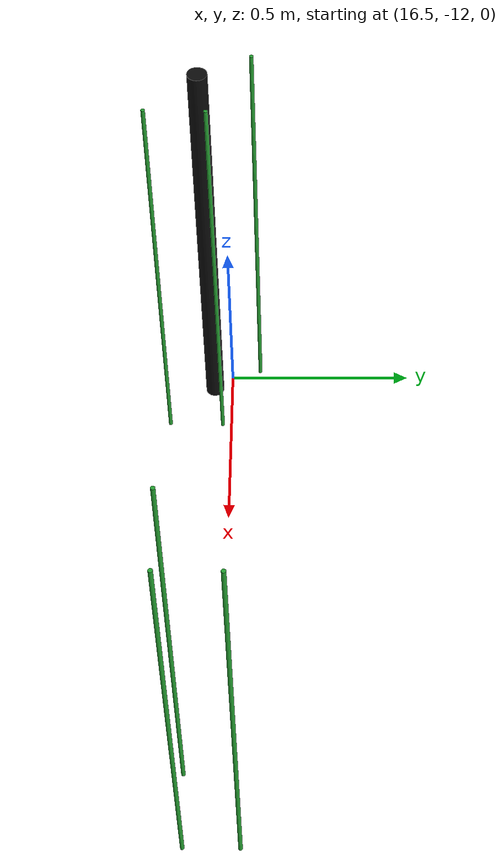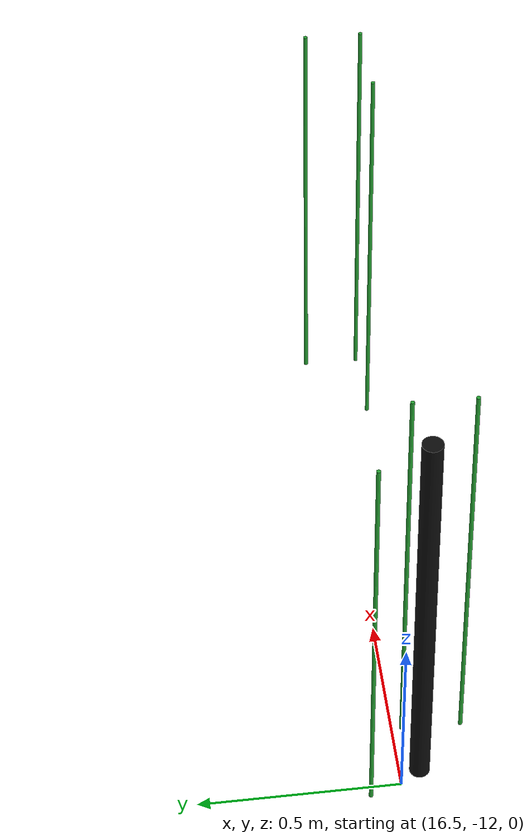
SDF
<sdf version="1.6">
 <world name="default">
  <model name="pole_27">
   <static>1</static>
   <pose>16.54 -12.05 0.575 0 -0 0</pose>
   <link name="link">
    <collision name="collision">
     <geometry><cylinder><length>1.15</length><radius>0.025</radius></cylinder></geometry>
    </collision>
    <visual name="visual">
     <geometry><cylinder><length>1.15</length><radius>0.025</radius></cylinder></geometry>
     <material>
      <script><uri>file://media/materials/scripts/gazebo.material</uri><name>Gazebo/Chrome</name></script>
      <shader type="vertex"><normal_map>__default__</normal_map></shader>
      <emissive>0.1 0.1 0.1 1</emissive>
      <specular>0.01 0.01 0.01 1</specular>
      <ambient>0.5 0.5 0.5 1</ambient>
      <diffuse>0.05 0.05 0.05 1</diffuse>
     </material>
    </visual>
   </link>
  </model>
  <model name="pole_27_clone_clone_1">
   <link name="link">
    <inertial>
     <mass>1</mass>
     <inertia><ixx>1</ixx><ixy>0</ixy><ixz>0</ixz><iyy>1</iyy><iyz>0</iyz><izz>1</izz></inertia>
    </inertial>
    <visual name="visual">
     <geometry><cylinder><length>1.15</length><radius>0.005</radius></cylinder></geometry>
     <material>
      <script><uri>file://media/materials/scripts/gazebo.material</uri><name>Gazebo/Green</name></script>
      <shader type="vertex"><normal_map>__default__</normal_map></shader>
      <emissive>0 0.1 0 1</emissive>
      <specular>0 0.01 0 1</specular>
      <ambient>0 0.5 0 1</ambient>
      <diffuse>0 0.05 0 1</diffuse>
     </material>
    </visual>
    <collision name="collision">
     <geometry><cylinder><radius>0.005</radius><length>1.15</length></cylinder></geometry>
     <surface>
      <friction>
       <ode><mu>1</mu><mu2>1</mu2><fdir1>0 0 0</fdir1><slip1>0</slip1><slip2>0</slip2></ode>
       <torsional>
        <coefficient>1</coefficient>
        <patch_radius>0</patch_radius>
        <surface_radius>0</surface_radius>
        <use_patch_radius>1</use_patch_radius>
        <ode><slip>0</slip></ode>
       </torsional>
      </friction>
      <bounce><restitution_coefficient>0</restitution_coefficient><threshold>1e+06</threshold></bounce>
      <contact>
       <collide_without_contact>0</collide_without_contact>
       <collide_without_contact_bitmask>1</collide_without_contact_bitmask>
       <collide_bitmask>1</collide_bitmask>
       <ode>
        <soft_cfm>0</soft_cfm>
        <soft_erp>0.2</soft_erp>
        <kp>1e+13</kp>
        <kd>1</kd>
        <max_vel>0.01</max_vel>
        <min_depth>0</min_depth>
       </ode>
       <bullet>
        <split_impulse>1</split_impulse>
        <split_impulse_penetration_threshold>-0.01</split_impulse_penetration_threshold>
        <soft_cfm>0</soft_cfm>
        <soft_erp>0.2</soft_erp>
        <kp>1e+13</kp>
        <kd>1</kd>
       </bullet>
      </contact>
     </surface>
    </collision>
   </link>
   <static>1</static>
   <pose>17.9801 -11.9481 0.575 0 -0 0</pose>
  </model>
  <model name="pole_27_clone_clone_2">
   <link name="link">
    <inertial>
     <mass>1</mass>
     <inertia><ixx>1</ixx><ixy>0</ixy><ixz>0</ixz><iyy>1</iyy><iyz>0</iyz><izz>1</izz></inertia>
    </inertial>
    <visual name="visual">
     <geometry><cylinder><length>1.15</length><radius>0.005</radius></cylinder></geometry>
     <material>
      <script><uri>file://media/materials/scripts/gazebo.material</uri><name>Gazebo/Green</name></script>
      <shader type="vertex"><normal_map>__default__</normal_map></shader>
      <emissive>0 0.1 0 1</emissive>
      <specular>0 0.01 0 1</specular>
      <ambient>0 0.5 0 1</ambient>
      <diffuse>0 0.05 0 1</diffuse>
     </material>
    </visual>
    <collision name="collision">
     <geometry><cylinder><radius>0.005</radius><length>1.15</length></cylinder></geometry>
     <surface>
      <friction>
       <ode><mu>1</mu><mu2>1</mu2><fdir1>0 0 0</fdir1><slip1>0</slip1><slip2>0</slip2></ode>
       <torsional>
        <coefficient>1</coefficient>
        <patch_radius>0</patch_radius>
        <surface_radius>0</surface_radius>
        <use_patch_radius>1</use_patch_radius>
        <ode><slip>0</slip></ode>
       </torsional>
      </friction>
      <bounce><restitution_coefficient>0</restitution_coefficient><threshold>1e+06</threshold></bounce>
      <contact>
       <collide_without_contact>0</collide_without_contact>
       <collide_without_contact_bitmask>1</collide_without_contact_bitmask>
       <collide_bitmask>1</collide_bitmask>
       <ode>
        <soft_cfm>0</soft_cfm>
        <soft_erp>0.2</soft_erp>
        <kp>1e+13</kp>
        <kd>1</kd>
        <max_vel>0.01</max_vel>
        <min_depth>0</min_depth>
       </ode>
       <bullet>
        <split_impulse>1</split_impulse>
        <split_impulse_penetration_threshold>-0.01</split_impulse_penetration_threshold>
        <soft_cfm>0</soft_cfm>
        <soft_erp>0.2</soft_erp>
        <kp>1e+13</kp>
        <kd>1</kd>
       </bullet>
      </contact>
     </surface>
    </collision>
   </link>
   <static>1</static>
   <pose>17.7821 -12.092 0.575 0 -0 0</pose>
  </model>
  <model name="pole_27_clone_clone_3">
   <link name="link">
    <inertial>
     <mass>1</mass>
     <inertia><ixx>1</ixx><ixy>0</ixy><ixz>0</ixz><iyy>1</iyy><iyz>0</iyz><izz>1</izz></inertia>
    </inertial>
    <visual name="visual">
     <geometry><cylinder><length>1.15</length><radius>0.005</radius></cylinder></geometry>
     <material>
      <script><uri>file://media/materials/scripts/gazebo.material</uri><name>Gazebo/Green</name></script>
      <shader type="vertex"><normal_map>__default__</normal_map></shader>
      <emissive>0 0.1 0 1</emissive>
      <specular>0 0.01 0 1</specular>
      <ambient>0 0.5 0 1</ambient>
      <diffuse>0 0.05 0 1</diffuse>
     </material>
    </visual>
    <collision name="collision">
     <geometry><cylinder><radius>0.005</radius><length>1.15</length></cylinder></geometry>
     <surface>
      <friction>
       <ode><mu>1</mu><mu2>1</mu2><fdir1>0 0 0</fdir1><slip1>0</slip1><slip2>0</slip2></ode>
       <torsional>
        <coefficient>1</coefficient>
        <patch_radius>0</patch_radius>
        <surface_radius>0</surface_radius>
        <use_patch_radius>1</use_patch_radius>
        <ode><slip>0</slip></ode>
       </torsional>
      </friction>
      <bounce><restitution_coefficient>0</restitution_coefficient><threshold>1e+06</threshold></bounce>
      <contact>
       <collide_without_contact>0</collide_without_contact>
       <collide_without_contact_bitmask>1</collide_without_contact_bitmask>
       <collide_bitmask>1</collide_bitmask>
       <ode>
        <soft_cfm>0</soft_cfm>
        <soft_erp>0.2</soft_erp>
        <kp>1e+13</kp>
        <kd>1</kd>
        <max_vel>0.01</max_vel>
        <min_depth>0</min_depth>
       </ode>
       <bullet>
        <split_impulse>1</split_impulse>
        <split_impulse_penetration_threshold>-0.01</split_impulse_penetration_threshold>
        <soft_cfm>0</soft_cfm>
        <soft_erp>0.2</soft_erp>
        <kp>1e+13</kp>
        <kd>1</kd>
       </bullet>
      </contact>
     </surface>
    </collision>
   </link>
   <static>1</static>
   <pose>17.9786 -12.0869 0.575 0 -0 0</pose>
  </model>
  <model name="pole_27_clone_clone_174">
   <link name="link">
    <inertial>
     <mass>1</mass>
     <inertia><ixx>1</ixx><ixy>0</ixy><ixz>0</ixz><iyy>1</iyy><iyz>0</iyz><izz>1</izz></inertia>
    </inertial>
    <visual name="visual">
     <geometry><cylinder><length>1.15</length><radius>0.005</radius></cylinder></geometry>
     <material>
      <script><uri>file://media/materials/scripts/gazebo.material</uri><name>Gazebo/Green</name></script>
      <shader type="vertex"><normal_map>__default__</normal_map></shader>
      <emissive>0 0.1 0 1</emissive>
      <specular>0 0.01 0 1</specular>
      <ambient>0 0.5 0 1</ambient>
      <diffuse>0 0.05 0 1</diffuse>
     </material>
    </visual>
    <collision name="collision">
     <geometry><cylinder><radius>0.005</radius><length>1.15</length></cylinder></geometry>
     <surface>
      <friction>
       <ode><mu>1</mu><mu2>1</mu2><fdir1>0 0 0</fdir1><slip1>0</slip1><slip2>0</slip2></ode>
       <torsional>
        <coefficient>1</coefficient>
        <patch_radius>0</patch_radius>
        <surface_radius>0</surface_radius>
        <use_patch_radius>1</use_patch_radius>
        <ode><slip>0</slip></ode>
       </torsional>
      </friction>
      <bounce><restitution_coefficient>0</restitution_coefficient><threshold>1e+06</threshold></bounce>
      <contact>
       <collide_without_contact>0</collide_without_contact>
       <collide_without_contact_bitmask>1</collide_without_contact_bitmask>
       <collide_bitmask>1</collide_bitmask>
       <ode>
        <soft_cfm>0</soft_cfm>
        <soft_erp>0.2</soft_erp>
        <kp>1e+13</kp>
        <kd>1</kd>
        <max_vel>0.01</max_vel>
        <min_depth>0</min_depth>
       </ode>
       <bullet>
        <split_impulse>1</split_impulse>
        <split_impulse_penetration_threshold>-0.01</split_impulse_penetration_threshold>
        <soft_cfm>0</soft_cfm>
        <soft_erp>0.2</soft_erp>
        <kp>1e+13</kp>
        <kd>1</kd>
       </bullet>
      </contact>
     </surface>
    </collision>
   </link>
   <static>1</static>
   <pose>16.6687 -12.172 0.575 0 -0 0</pose>
  </model>
  <model name="pole_27_clone_clone_176">
   <link name="link">
    <inertial>
     <mass>1</mass>
     <inertia><ixx>1</ixx><ixy>0</ixy><ixz>0</ixz><iyy>1</iyy><iyz>0</iyz><izz>1</izz></inertia>
    </inertial>
    <visual name="visual">
     <geometry><cylinder><length>1.15</length><radius>0.005</radius></cylinder></geometry>
     <material>
      <script><uri>file://media/materials/scripts/gazebo.material</uri><name>Gazebo/Green</name></script>
      <shader type="vertex"><normal_map>__default__</normal_map></shader>
      <emissive>0 0.1 0 1</emissive>
      <specular>0 0.01 0 1</specular>
      <ambient>0 0.5 0 1</ambient>
      <diffuse>0 0.05 0 1</diffuse>
     </material>
    </visual>
    <collision name="collision">
     <geometry><cylinder><radius>0.005</radius><length>1.15</length></cylinder></geometry>
     <surface>
      <friction>
       <ode><mu>1</mu><mu2>1</mu2><fdir1>0 0 0</fdir1><slip1>0</slip1><slip2>0</slip2></ode>
       <torsional>
        <coefficient>1</coefficient>
        <patch_radius>0</patch_radius>
        <surface_radius>0</surface_radius>
        <use_patch_radius>1</use_patch_radius>
        <ode><slip>0</slip></ode>
       </torsional>
      </friction>
      <bounce><restitution_coefficient>0</restitution_coefficient><threshold>1e+06</threshold></bounce>
      <contact>
       <collide_without_contact>0</collide_without_contact>
       <collide_without_contact_bitmask>1</collide_without_contact_bitmask>
       <collide_bitmask>1</collide_bitmask>
       <ode>
        <soft_cfm>0</soft_cfm>
        <soft_erp>0.2</soft_erp>
        <kp>1e+13</kp>
        <kd>1</kd>
        <max_vel>0.01</max_vel>
        <min_depth>0</min_depth>
       </ode>
       <bullet>
        <split_impulse>1</split_impulse>
        <split_impulse_penetration_threshold>-0.01</split_impulse_penetration_threshold>
        <soft_cfm>0</soft_cfm>
        <soft_erp>0.2</soft_erp>
        <kp>1e+13</kp>
        <kd>1</kd>
       </bullet>
      </contact>
     </surface>
    </collision>
   </link>
   <static>1</static>
   <pose>16.6726 -12.0249 0.575 0 -0 0</pose>
  </model>
  <model name="pole_27_clone_clone_181">
   <link name="link">
    <inertial>
     <mass>1</mass>
     <inertia><ixx>1</ixx><ixy>0</ixy><ixz>0</ixz><iyy>1</iyy><iyz>0</iyz><izz>1</izz></inertia>
    </inertial>
    <visual name="visual">
     <geometry><cylinder><length>1.15</length><radius>0.005</radius></cylinder></geometry>
     <material>
      <script><uri>file://media/materials/scripts/gazebo.material</uri><name>Gazebo/Green</name></script>
      <shader type="vertex"><normal_map>__default__</normal_map></shader>
      <emissive>0 0.1 0 1</emissive>
      <specular>0 0.01 0 1</specular>
      <ambient>0 0.5 0 1</ambient>
      <diffuse>0 0.05 0 1</diffuse>
     </material>
    </visual>
    <collision name="collision">
     <geometry><cylinder><radius>0.005</radius><length>1.15</length></cylinder></geometry>
     <surface>
      <friction>
       <ode><mu>1</mu><mu2>1</mu2><fdir1>0 0 0</fdir1><slip1>0</slip1><slip2>0</slip2></ode>
       <torsional>
        <coefficient>1</coefficient>
        <patch_radius>0</patch_radius>
        <surface_radius>0</surface_radius>
        <use_patch_radius>1</use_patch_radius>
        <ode><slip>0</slip></ode>
       </torsional>
      </friction>
      <bounce><restitution_coefficient>0</restitution_coefficient><threshold>1e+06</threshold></bounce>
      <contact>
       <collide_without_contact>0</collide_without_contact>
       <collide_without_contact_bitmask>1</collide_without_contact_bitmask>
       <collide_bitmask>1</collide_bitmask>
       <ode>
        <soft_cfm>0</soft_cfm>
        <soft_erp>0.2</soft_erp>
        <kp>1e+13</kp>
        <kd>1</kd>
        <max_vel>0.01</max_vel>
        <min_depth>0</min_depth>
       </ode>
       <bullet>
        <split_impulse>1</split_impulse>
        <split_impulse_penetration_threshold>-0.01</split_impulse_penetration_threshold>
        <soft_cfm>0</soft_cfm>
        <soft_erp>0.2</soft_erp>
        <kp>1e+13</kp>
        <kd>1</kd>
       </bullet>
      </contact>
     </surface>
    </collision>
   </link>
   <static>1</static>
   <pose>16.4744 -11.9214 0.575 0 -0 0</pose>
  </model>
 </world>
</sdf>
